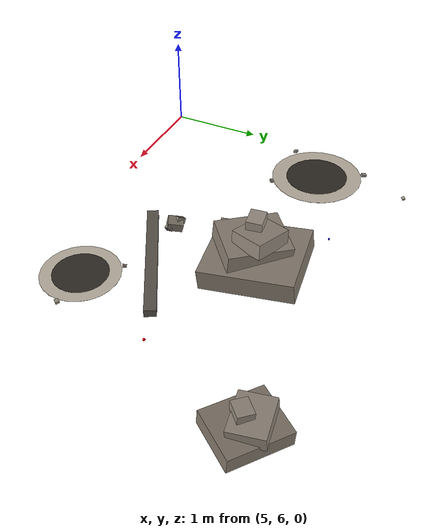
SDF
<sdf version="1.6">
 <world name="lunar_arena">
  <model name="groove_3">
   <static>true</static>
   <pose>7.5 7 -0.04 0 0 0.5</pose>
   <link name="link">
    <collision name="c">
     <geometry><box><size>1.5 0.12 0.08</size></box></geometry>
     <surface><friction><ode><mu>0.7</mu><mu2>0.5</mu2></ode></friction></surface>
    </collision>
    <visual name="v">
     <geometry><box><size>1.5 0.12 0.08</size></box></geometry>
     <material>
      <ambient>0.18 0.17 0.15 1</ambient>
      <diffuse>0.36 0.33 0.30 1</diffuse>
      <specular>0.03 0.03 0.03 1</specular>
     </material>
    </visual>
   </link>
  </model>
  <model name="mountain_2">
   <static>true</static>
   <pose>7.2 8.0 0 0 0 1.7</pose>
   <link name="link">
    <collision name="layer1_c">
     <pose>0 0 0.11 0.06 -0.08 0</pose>
     <geometry><box><size>0.95 0.80 0.22</size></box></geometry>
    </collision>
    <visual name="layer1_v">
     <pose>0 0 0.11 0.06 -0.08 0</pose>
     <geometry><box><size>0.95 0.80 0.22</size></box></geometry>
     <material>
      <ambient>0.27 0.25 0.22 1</ambient>
      <diffuse>0.50 0.46 0.41 1</diffuse>
      <specular>0.03 0.03 0.03 1</specular>
     </material>
    </visual>
    <collision name="layer2_c">
     <pose>-0.05 0.03 0.28 0.10 0.06 0.6</pose>
     <geometry><box><size>0.65 0.52 0.20</size></box></geometry>
    </collision>
    <visual name="layer2_v">
     <pose>-0.05 0.03 0.28 0.10 0.06 0.6</pose>
     <geometry><box><size>0.65 0.52 0.20</size></box></geometry>
     <material>
      <ambient>0.29 0.27 0.24 1</ambient>
      <diffuse>0.54 0.50 0.45 1</diffuse>
      <specular>0.03 0.03 0.03 1</specular>
     </material>
    </visual>
    <collision name="layer3_c">
     <pose>0.04 -0.04 0.42 -0.05 0.10 1.1</pose>
     <geometry><box><size>0.40 0.35 0.16</size></box></geometry>
    </collision>
    <visual name="layer3_v">
     <pose>0.04 -0.04 0.42 -0.05 0.10 1.1</pose>
     <geometry><box><size>0.40 0.35 0.16</size></box></geometry>
     <material>
      <ambient>0.31 0.29 0.26 1</ambient>
      <diffuse>0.57 0.53 0.48 1</diffuse>
      <specular>0.03 0.03 0.03 1</specular>
     </material>
    </visual>
    <collision name="layer4_c">
     <pose>-0.02 0.03 0.54 0.04 -0.03 1.6</pose>
     <geometry><box><size>0.20 0.16 0.12</size></box></geometry>
    </collision>
    <visual name="layer4_v">
     <pose>-0.02 0.03 0.54 0.04 -0.03 1.6</pose>
     <geometry><box><size>0.20 0.16 0.12</size></box></geometry>
     <material>
      <ambient>0.33 0.31 0.28 1</ambient>
      <diffuse>0.60 0.56 0.51 1</diffuse>
      <specular>0.04 0.04 0.04 1</specular>
     </material>
    </visual>
   </link>
  </model>
  <model name="mountain_6">
   <static>true</static>
   <pose>9.0 8.7 0 0 0 2.5</pose>
   <link name="link">
    <collision name="layer1_c">
     <pose>0 0 0.075 0.04 0.06 0</pose>
     <geometry><box><size>0.60 0.50 0.15</size></box></geometry>
    </collision>
    <visual name="layer1_v">
     <pose>0 0 0.075 0.04 0.06 0</pose>
     <geometry><box><size>0.60 0.50 0.15</size></box></geometry>
     <material>
      <ambient>0.27 0.25 0.22 1</ambient>
      <diffuse>0.50 0.46 0.41 1</diffuse>
      <specular>0.03 0.03 0.03 1</specular>
     </material>
    </visual>
    <collision name="layer2_c">
     <pose>0.04 -0.03 0.18 -0.05 -0.04 0.8</pose>
     <geometry><box><size>0.40 0.33 0.13</size></box></geometry>
    </collision>
    <visual name="layer2_v">
     <pose>0.04 -0.03 0.18 -0.05 -0.04 0.8</pose>
     <geometry><box><size>0.40 0.33 0.13</size></box></geometry>
     <material>
      <ambient>0.29 0.27 0.24 1</ambient>
      <diffuse>0.54 0.50 0.45 1</diffuse>
      <specular>0.03 0.03 0.03 1</specular>
     </material>
    </visual>
    <collision name="layer3_c">
     <pose>-0.02 0.02 0.26 0.05 0.04 1.4</pose>
     <geometry><box><size>0.18 0.15 0.09</size></box></geometry>
    </collision>
    <visual name="layer3_v">
     <pose>-0.02 0.02 0.26 0.05 0.04 1.4</pose>
     <geometry><box><size>0.18 0.15 0.09</size></box></geometry>
     <material>
      <ambient>0.32 0.30 0.27 1</ambient>
      <diffuse>0.58 0.54 0.49 1</diffuse>
      <specular>0.04 0.04 0.04 1</specular>
     </material>
    </visual>
   </link>
  </model>
  <model name="crater_5">
   <static>true</static>
   <pose>8.0 6.5 0 0 0 0.3</pose>
   <link name="link">
    <visual name="rim_v">
     <pose>0 0 0.001 0 0 0</pose>
     <geometry><cylinder><radius>0.40</radius><length>0.002</length></cylinder></geometry>
     <material>
      <ambient>0.42 0.40 0.37 1</ambient>
      <diffuse>0.74 0.70 0.64 1</diffuse>
      <specular>0.04 0.04 0.04 1</specular>
     </material>
    </visual>
    <visual name="floor_v">
     <pose>0 0 0.003 0 0 0</pose>
     <geometry><cylinder><radius>0.28</radius><length>0.002</length></cylinder></geometry>
     <material>
      <ambient>0.08 0.07 0.06 1</ambient>
      <diffuse>0.19 0.17 0.15 1</diffuse>
      <specular>0.01 0.01 0.01 1</specular>
     </material>
    </visual>
    <collision name="ej1_c">
     <pose>0.42 -0.10 0.011 0.2 0.0 0.6</pose>
     <geometry><box><size>0.050 0.038 0.022</size></box></geometry>
    </collision>
    <visual name="ej1_v">
     <pose>0.42 -0.10 0.011 0.2 0.0 0.6</pose>
     <geometry><box><size>0.050 0.038 0.022</size></box></geometry>
     <material><ambient>0.31 0.29 0.26 1</ambient><diffuse>0.56 0.52 0.47 1</diffuse></material>
    </visual>
    <collision name="ej2_c">
     <pose>-0.15 0.40 0.010 -0.1 0.2 1.8</pose>
     <geometry><box><size>0.040 0.032 0.020</size></box></geometry>
    </collision>
    <visual name="ej2_v">
     <pose>-0.15 0.40 0.010 -0.1 0.2 1.8</pose>
     <geometry><box><size>0.040 0.032 0.020</size></box></geometry>
     <material><ambient>0.30 0.28 0.25 1</ambient><diffuse>0.55 0.51 0.46 1</diffuse></material>
    </visual>
   </link>
  </model>
  <model name="crater_6">
   <static>true</static>
   <pose>5.5 8.0 0 0 0 1.8</pose>
   <link name="link">
    <visual name="rim_v">
     <pose>0 0 0.001 0 0 0</pose>
     <geometry><cylinder><radius>0.50</radius><length>0.002</length></cylinder></geometry>
     <material>
      <ambient>0.41 0.39 0.36 1</ambient>
      <diffuse>0.73 0.69 0.63 1</diffuse>
      <specular>0.04 0.04 0.04 1</specular>
     </material>
    </visual>
    <visual name="floor_v">
     <pose>0 0 0.003 0 0 0</pose>
     <geometry><cylinder><radius>0.34</radius><length>0.002</length></cylinder></geometry>
     <material>
      <ambient>0.08 0.07 0.06 1</ambient>
      <diffuse>0.18 0.16 0.14 1</diffuse>
      <specular>0.01 0.01 0.01 1</specular>
     </material>
    </visual>
    <collision name="ej1_c">
     <pose>0.52 0.12 0.013 0.1 0.2 0.5</pose>
     <geometry><box><size>0.055 0.042 0.026</size></box></geometry>
    </collision>
    <visual name="ej1_v">
     <pose>0.52 0.12 0.013 0.1 0.2 0.5</pose>
     <geometry><box><size>0.055 0.042 0.026</size></box></geometry>
     <material><ambient>0.32 0.30 0.27 1</ambient><diffuse>0.58 0.54 0.49 1</diffuse></material>
    </visual>
    <collision name="ej2_c">
     <pose>-0.30 0.45 0.011 -0.2 0.1 1.3</pose>
     <geometry><box><size>0.048 0.038 0.022</size></box></geometry>
    </collision>
    <visual name="ej2_v">
     <pose>-0.30 0.45 0.011 -0.2 0.1 1.3</pose>
     <geometry><box><size>0.048 0.038 0.022</size></box></geometry>
     <material><ambient>0.30 0.28 0.25 1</ambient><diffuse>0.55 0.51 0.46 1</diffuse></material>
    </visual>
    <collision name="ej3_c">
     <pose>-0.48 -0.20 0.010 0.3 -0.1 2.1</pose>
     <geometry><box><size>0.042 0.035 0.020</size></box></geometry>
    </collision>
    <visual name="ej3_v">
     <pose>-0.48 -0.20 0.010 0.3 -0.1 2.1</pose>
     <geometry><box><size>0.042 0.035 0.020</size></box></geometry>
     <material><ambient>0.31 0.29 0.26 1</ambient><diffuse>0.56 0.52 0.47 1</diffuse></material>
    </visual>
   </link>
  </model>
  <model name="rock_8_blue">
   <static>false</static>
   <pose>6.5 8.5 0.010 0 0 0</pose>
   <link name="link">
    <inertial>
     <mass>0.020</mass>
     <inertia><ixx>0.00001</ixx><iyy>0.00001</iyy><izz>0.00001</izz></inertia>
    </inertial>
    <collision name="c">
     <geometry><sphere><radius>0.010</radius></sphere></geometry>
     <surface><friction><ode><mu>0.8</mu><mu2>0.8</mu2></ode></friction></surface>
    </collision>
    <visual name="v">
     <geometry><sphere><radius>0.010</radius></sphere></geometry>
     <material><ambient>0.1 0.1 0.9 1</ambient><diffuse>0 0 1 1</diffuse><emissive>0 0 0.3 1</emissive></material>
    </visual>
   </link>
  </model>
  <model name="rock_10_red">
   <static>false</static>
   <pose>8.5 7.5 0.013 0 0 0</pose>
   <link name="link">
    <inertial>
     <mass>0.030</mass>
     <inertia><ixx>0.00001</ixx><iyy>0.00001</iyy><izz>0.00001</izz></inertia>
    </inertial>
    <collision name="c">
     <geometry><sphere><radius>0.013</radius></sphere></geometry>
     <surface><friction><ode><mu>0.8</mu><mu2>0.8</mu2></ode></friction></surface>
    </collision>
    <visual name="v">
     <geometry><sphere><radius>0.013</radius></sphere></geometry>
     <material><ambient>0.9 0.1 0.1 1</ambient><diffuse>1 0 0 1</diffuse><emissive>0.3 0 0 1</emissive></material>
    </visual>
   </link>
  </model>
  <model name="rock_obstacle_3">
   <static>true</static>
   <pose>7 7 0 0 0 2.1</pose>
   <link name="link">
    <collision name="body_c">
     <pose>0 0 0.06 0.25 0.2 0</pose>
     <geometry><box><size>0.16 0.12 0.11</size></box></geometry>
    </collision>
    <visual name="body_v">
     <pose>0 0 0.06 0.25 0.2 0</pose>
     <geometry><box><size>0.16 0.12 0.11</size></box></geometry>
     <material>
      <ambient>0.27 0.25 0.22 1</ambient>
      <diffuse>0.50 0.46 0.41 1</diffuse>
      <specular>0.04 0.04 0.04 1</specular>
     </material>
    </visual>
    <collision name="bump_c">
     <pose>0.05 0.02 0.09 -0.3 0.5 0.4</pose>
     <geometry><box><size>0.09 0.07 0.06</size></box></geometry>
    </collision>
    <visual name="bump_v">
     <pose>0.05 0.02 0.09 -0.3 0.5 0.4</pose>
     <geometry><box><size>0.09 0.07 0.06</size></box></geometry>
     <material>
      <ambient>0.29 0.27 0.24 1</ambient>
      <diffuse>0.54 0.50 0.45 1</diffuse>
      <specular>0.04 0.04 0.04 1</specular>
     </material>
    </visual>
    <collision name="side_c">
     <pose>-0.06 -0.03 0.04 0.4 -0.2 -0.7</pose>
     <geometry><box><size>0.07 0.06 0.05</size></box></geometry>
    </collision>
    <visual name="side_v">
     <pose>-0.06 -0.03 0.04 0.4 -0.2 -0.7</pose>
     <geometry><box><size>0.07 0.06 0.05</size></box></geometry>
     <material>
      <ambient>0.26 0.24 0.21 1</ambient>
      <diffuse>0.48 0.44 0.40 1</diffuse>
      <specular>0.04 0.04 0.04 1</specular>
     </material>
    </visual>
   </link>
  </model>
  <model name="pebble_10">
   <static>true</static>
   <pose>5.5 9.0 0.011 0.4 0.1 0.6</pose>
   <link name="l">
    <visual name="v">
     <geometry><box><size>0.038 0.032 0.022</size></box></geometry>
     <material>
      <ambient>0.34 0.32 0.29 1</ambient>
      <diffuse>0.62 0.58 0.52 1</diffuse>
      <specular>0.04 0.04 0.04 1</specular>
     </material>
    </visual>
   </link>
  </model>
 </world>
</sdf>
